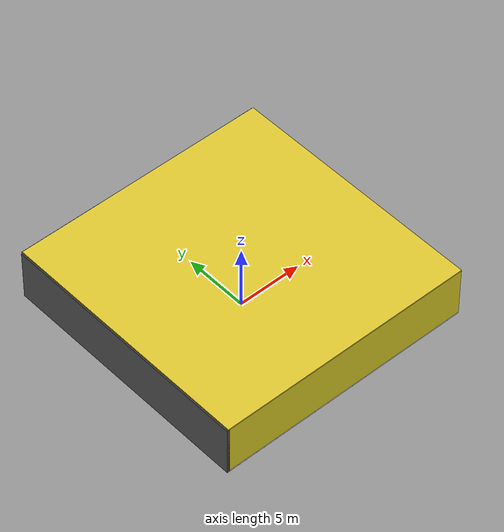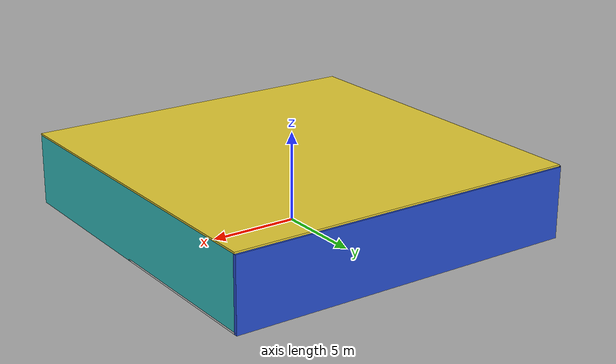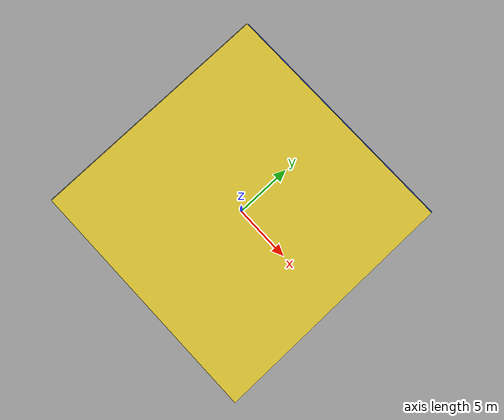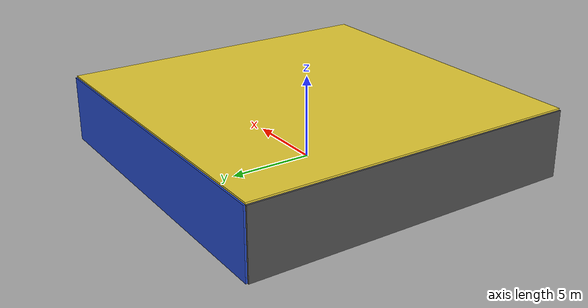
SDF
<sdf version="1.4">
 <world name="default">
  <physics type="ode">
   <max_step_size>0.001</max_step_size>
   <real_time_factor>1</real_time_factor>
   <real_time_update_rate>1000</real_time_update_rate>
   <gravity>0 0 -9.8</gravity>
  </physics>
  <scene><ambient>0.4 0.4 0.4 1</ambient><background>0.7 0.7 0.7 1</background><shadows>1</shadows></scene>
  <model name="Surrounding">
   <static>1</static>
   <link name="Ceiling">
    <collision name="Ceiling_Collision"><geometry><box><size>20 20 0.1</size></box></geometry></collision>
    <visual name="Ceiling_Visual">
     <geometry><box><size>20 20 0.1</size></box></geometry>
     <material>
      <script><uri>file://media/materials/scripts/gazebo.material</uri><name>Gazebo/ZincYellow</name></script>
     </material>
    </visual>
    <pose>0 0 4.05 0 0 0</pose>
   </link>
   <link name="Wall_South">
    <collision name="Wall_South_Collision">
     <geometry><box><size>20 0 4</size></box></geometry>
     <pose>0 0 2 0 -0 0</pose>
    </collision>
    <visual name="Wall_South_Visual">
     <pose>0 0 2 0 -0 0</pose>
     <geometry><box><size>20 0 4</size></box></geometry>
     <material>
      <script><uri>file://media/materials/scripts/gazebo.material</uri><name>Gazebo/Yellow</name></script>
     </material>
    </visual>
    <velocity_decay><linear>0</linear><angular>0</angular></velocity_decay>
    <pose>0 -10 0 0 -0 0</pose>
   </link>
   <link name="Wall_East">
    <collision name="Wall_21_Collision">
     <geometry><box><size>20 0 4</size></box></geometry>
     <pose>0 0 2 0 -0 0</pose>
    </collision>
    <visual name="Wall_21_Visual">
     <pose>0 0 2 0 -0 0</pose>
     <geometry><box><size>20 0 4</size></box></geometry>
     <material>
      <script><uri>file://media/materials/scripts/gazebo.material</uri><name>Gazebo/TurquoiseGlow</name></script>
     </material>
    </visual>
    <velocity_decay><linear>0</linear><angular>0</angular></velocity_decay>
    <pose>10 0 0 0 -0 1.5708</pose>
   </link>
   <link name="Wall_North">
    <collision name="Wall_22_Collision">
     <geometry><box><size>20 0.2 4</size></box></geometry>
     <pose>0 0 2 0 -0 0</pose>
    </collision>
    <visual name="Wall_22_Visual">
     <pose>0 0 2 0 -0 0</pose>
     <geometry><box><size>20 0.2 4</size></box></geometry>
     <material>
      <script><uri>file://media/materials/scripts/gazebo.material</uri><name>Gazebo/BlueGlow</name></script>
     </material>
    </visual>
    <velocity_decay><linear>0</linear><angular>0</angular></velocity_decay>
    <pose>0 10 0 0 -0 0</pose>
   </link>
   <link name="Wall_West">
    <collision name="Wall_23_Collision">
     <geometry><box><size>20 0.2 4</size></box></geometry>
     <pose>0 0 2 0 -0 0</pose>
    </collision>
    <visual name="Wall_23_Visual">
     <pose>0 0 2 0 -0 0</pose>
     <geometry><box><size>20 0.2 4</size></box></geometry>
     <material>
      <script><uri>file://media/materials/scripts/gazebo.material</uri><name>Gazebo/DarkGrey</name></script>
     </material>
    </visual>
    <velocity_decay><linear>0</linear><angular>0</angular></velocity_decay>
    <pose>-10 0 0 0 0 -1.5708</pose>
   </link>
   <link name="Ground_link">
    <collision name="collision">
     <pose>0 0 .05 0 -0 0</pose>
     <geometry><box><size>20 20 0.1</size></box></geometry>
    </collision>
    <visual name="visual">
     <pose>0 0 .05 0 -0 0</pose>
     <geometry><box><size>20 20 0.1</size></box></geometry>
     <material>
      <script><uri>file://media/materials/scripts/gazebo.material</uri><name>Gazebo/White</name></script>
     </material>
    </visual>
   </link>
   <static>1</static>
  </model>
  <spherical_coordinates>
   <surface_model>EARTH_WGS84</surface_model>
   <latitude_deg>0</latitude_deg>
   <longitude_deg>0</longitude_deg>
   <elevation>0</elevation>
   <heading_deg>0</heading_deg>
  </spherical_coordinates>
  <light name="lightball_0" type="diffuse">
   <diffuse>0.8 0.8 0.8 1</diffuse>
   <specular>0.2 0.2 0.2 1</specular>
   <attenuation>
    <range>100</range>
    <constant>0.7</constant>
    <linear>0.01</linear>
    <quadratic>0.001</quadratic>
   </attenuation>
   <direction>-0.5 0.1 -0.9</direction>
   <pose>-4.70823860647 1.29734534324 1.40482866848 0 0 0</pose>
  </light>
  <light name="lightball_1" type="diffuse">
   <diffuse>0.8 0.8 0.8 1</diffuse>
   <specular>0.2 0.2 0.2 1</specular>
   <attenuation>
    <range>100</range>
    <constant>0.7</constant>
    <linear>0.01</linear>
    <quadratic>0.001</quadratic>
   </attenuation>
   <direction>-0.5 0.1 -0.9</direction>
   <pose>-5.60357218204 -2.83781932104 2.58075756871 0 0 0</pose>
  </light>
  <light name="lightball_2" type="diffuse">
   <diffuse>0.8 0.8 0.8 1</diffuse>
   <specular>0.2 0.2 0.2 1</specular>
   <attenuation>
    <range>100</range>
    <constant>0.7</constant>
    <linear>0.01</linear>
    <quadratic>0.001</quadratic>
   </attenuation>
   <direction>-0.5 0.1 -0.9</direction>
   <pose>-7.63058016523 -5.22407030287 3.28885136278 0 0 0</pose>
  </light>
  <light name="lightball_3" type="diffuse">
   <diffuse>0.8 0.8 0.8 1</diffuse>
   <specular>0.2 0.2 0.2 1</specular>
   <attenuation>
    <range>100</range>
    <constant>0.7</constant>
    <linear>0.01</linear>
    <quadratic>0.001</quadratic>
   </attenuation>
   <direction>-0.5 0.1 -0.9</direction>
   <pose>2.15317394803 -9.89127558614 3.15392037261 0 0 0</pose>
  </light>
  <include>
   <uri>model://construction_cone</uri>
   <pose>5.07017966644 -6.86188188763 0 0 0 2.99702688392</pose>
  </include>
  <include><uri>model://table</uri><pose>7.04085936531 -1.22492512398 0 0 0 2.41020479348</pose></include>
  <include><uri>model://cabinet</uri><pose>7.1004272268 6.9709091276 0 0 0 2.44057200139</pose></include>
 </world>
</sdf>

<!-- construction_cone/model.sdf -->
<sdf version="1.5">
  <model name="Construction Cone">
    <link name="link">
      <collision name="collision">
        <geometry>
          <mesh>
            <scale>10 10 10</scale>
            <uri>file://isr-testbed/construction_cone/meshes/construction_cone.dae</uri>
          </mesh>
        </geometry>
      </collision>
      <visual name="visual">
        <geometry>
          <mesh>
            <scale>10 10 10</scale>
            <uri>file://isr-testbed/construction_cone/meshes/construction_cone.dae</uri>
          </mesh>
        </geometry>
      </visual>
    </link>
  </model>
</sdf>

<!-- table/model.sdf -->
<sdf version="1.5">
  <model name="table">
    <static>true</static>
    <link name="link">
      <collision name="surface">
        <pose>0 0 1.0 0 0 0</pose>
        <geometry>
          <box>
            <size>1.5 0.8 0.03</size>
          </box>
        </geometry>
        <surface>
          <friction>
            <ode>
              <mu>0.6</mu>
              <mu2>0.6</mu2>
            </ode>
          </friction>
        </surface>
      </collision>
      <visual name="visual1">
        <pose>0 0 1.0 0 0 0</pose>
        <geometry>
          <box>
            <size>1.5 0.8 0.03</size>
          </box>
        </geometry>
        <material>
          <script>
            <uri>model://media/materials/scripts/gazebo.material</uri>
            <name>Gazebo/Wood</name>
          </script>
        </material>
      </visual>
      <collision name="front_left_leg">
        <pose>0.68 0.38 0.5 0 0 0</pose>
        <geometry>
          <cylinder>
            <radius>0.02</radius>
            <length>1.0</length>
          </cylinder>
        </geometry>
      </collision>
      <visual name="front_left_leg">
        <pose>0.68 0.38 0.5 0 0 0</pose>
        <geometry>
          <cylinder>
            <radius>0.02</radius>
            <length>1.0</length>
          </cylinder>
        </geometry>
        <material>
          <script>
            <uri>model://media/materials/scripts/gazebo.material</uri>
            <name>Gazebo/Grey</name>
          </script>
        </material>
      </visual>
      <collision name="front_right_leg">
        <pose>0.68 -0.38 0.5 0 0 0</pose>
        <geometry>
          <cylinder>
            <radius>0.02</radius>
            <length>1.0</length>
          </cylinder>
        </geometry>
      </collision>
      <visual name="front_right_leg">
        <pose>0.68 -0.38 0.5 0 0 0</pose>
        <geometry>
          <cylinder>
            <radius>0.02</radius>
            <length>1.0</length>
          </cylinder>
        </geometry>
        <material>
          <script>
            <uri>model://media/materials/scripts/gazebo.material</uri>
            <name>Gazebo/Grey</name>
          </script>
        </material>
      </visual>
      <collision name="back_right_leg">
        <pose>-0.68 -0.38 0.5 0 0 0</pose>
        <geometry>
          <cylinder>
            <radius>0.02</radius>
            <length>1.0</length>
          </cylinder>
        </geometry>
      </collision>
      <visual name="back_right_leg">
        <pose>-0.68 -0.38 0.5 0 0 0</pose>
        <geometry>
          <cylinder>
            <radius>0.02</radius>
            <length>1.0</length>
          </cylinder>
        </geometry>
        <material>
          <script>
            <uri>model://media/materials/scripts/gazebo.material</uri>
            <name>Gazebo/Grey</name>
          </script>
        </material>
      </visual>
      <collision name="back_left_leg">
        <pose>-0.68 0.38 0.5 0 0 0</pose>
        <geometry>
          <cylinder>
            <radius>0.02</radius>
            <length>1.0</length>
          </cylinder>
        </geometry>
      </collision>
      <visual name="back_left_leg">
        <pose>-0.68 0.38 0.5 0 0 0</pose>
        <geometry>
          <cylinder>
            <radius>0.02</radius>
            <length>1.0</length>
          </cylinder>
        </geometry>
        <material>
          <script>
            <uri>model://media/materials/scripts/gazebo.material</uri>
            <name>Gazebo/Grey</name>
          </script>
        </material>
      </visual>
    </link>
  </model>
</sdf>

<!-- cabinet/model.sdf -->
<sdf version="1.5">
  <model name="cabinet">
    <static>true</static>
    <link name="cabinet_bottom_plate">
      <inertial>
        <pose>0 0 -1 0 0 0</pose>
        <inertia>
          <ixx>2.050000</ixx>
          <ixy>0</ixy>
          <ixz>0</ixz>
          <iyy>2.050000</iyy>
          <iyz>0</iyz>
          <izz>2.050000</izz>
        </inertia>
        <mass>25.000000</mass>
      </inertial>
      <collision name="cabinet_bottom_plate_geom">
        <pose>0 0 0.010000 0 0 0</pose>
        <geometry>
          <box>
            <size>0.450000 0.450000 0.020000</size>
          </box>
        </geometry>
      </collision>
      <visual name="cabinet_bottom_plate_geom_visual">
        <pose>0 0 0.010000 0 0 0</pose>
        <geometry>
          <box>
            <size>0.450000 0.450000 0.020000</size>
          </box>
        </geometry>
        <material>
          <script>
            <uri>model://media/materials/scripts/gazebo.material</uri>
            <name>Gazebo/Wood</name>
          </script>
        </material>
      </visual>
      <collision name="cabinet_bottom_plate_geom_cabinet_back_plate">
        <pose>0.235000 0 0.510000 0 0 0</pose>
        <geometry>
          <box>
            <size>0.020000 0.450000 1.020000</size>
          </box>
        </geometry>
      </collision>
      <visual name="cabinet_bottom_plate_geom_cabinet_back_plate_visual">
        <pose>0.235000 0 0.510000 0 0 0</pose>
        <geometry>
          <box>
            <size>0.020000 0.450000 1.020000</size>
          </box>
        </geometry>
        <material>
          <script>
            <uri>model://media/materials/scripts/gazebo.material</uri>
            <name>Gazebo/Wood</name>
          </script>
        </material>
      </visual>
      <collision name="cabinet_bottom_plate_geom_cabinet_left_plate">
        <pose>0 0.235000 0.510000 0 0 0</pose>
        <geometry>
          <box>
            <size>0.450000 0.020000 1.020000</size>
          </box>
        </geometry>
      </collision>
      <visual name="cabinet_bottom_plate_geom_cabinet_left_plate_visual">
        <pose>0 0.235000 0.510000 0 0 0</pose>
        <geometry>
          <box>
            <size>0.450000 0.020000 1.020000</size>
          </box>
        </geometry>
        <material>
          <script>
            <uri>model://media/materials/scripts/gazebo.material</uri>
            <name>Gazebo/Wood</name>
          </script>
        </material>
      </visual>
      <collision name="cabinet_bottom_plate_geom_cabinet_middle_plate">
        <pose>0 0 0.510000 0 0 0</pose>
        <geometry>
          <box>
            <size>0.450000 0.450000 0.020000</size>
          </box>
        </geometry>
      </collision>
      <visual name="cabinet_bottom_plate_geom_cabinet_middle_plate_visual">
        <pose>0 0 0.510000 0 0 0</pose>
        <geometry>
          <box>
            <size>0.450000 0.450000 0.020000</size>
          </box>
        </geometry>
        <material>
          <script>
            <uri>model://media/materials/scripts/gazebo.material</uri>
            <name>Gazebo/Wood</name>
          </script>
        </material>
      </visual>
      <collision name="cabinet_bottom_plate_geom_cabinet_right_plate">
        <pose>0 -0.235000 0.510000 0 0 0</pose>
        <geometry>
          <box>
            <size>0.450000 0.020000 1.020000</size>
          </box>
        </geometry>
      </collision>
      <visual name="cabinet_bottom_plate_geom_cabinet_right_plate_visual">
        <pose>0 -0.235000 0.510000 0 0 0</pose>
        <geometry>
          <box>
            <size>0.450000 0.020000 1.020000</size>
          </box>
        </geometry>
        <material>
          <script>
            <uri>model://media/materials/scripts/gazebo.material</uri>
            <name>Gazebo/Wood</name>
          </script>
        </material>
      </visual>
      <collision name="cabinet_bottom_plate_geom_cabinet_top_plate">
        <pose>0 0 1.010000 0 0 0</pose>
        <geometry>
          <box>
            <size>0.450000 0.450000 0.020000</size>
          </box>
        </geometry>
      </collision>
      <visual name="cabinet_bottom_plate_geom_cabinet_top_plate_visual">
        <pose>0 0 1.010000 0 0 0</pose>
        <geometry>
          <box>
            <size>0.450000 0.450000 0.020000</size>
          </box>
        </geometry>
        <material>
          <script>
            <uri>model://media/materials/scripts/gazebo.material</uri>
            <name>Gazebo/Wood</name>
          </script>
        </material>
      </visual>
    </link>
  </model>
</sdf>
